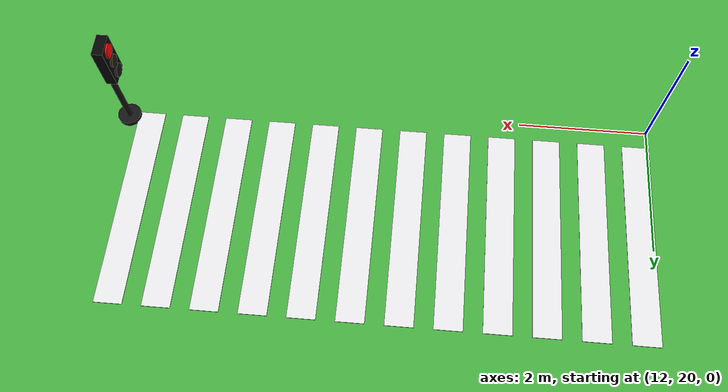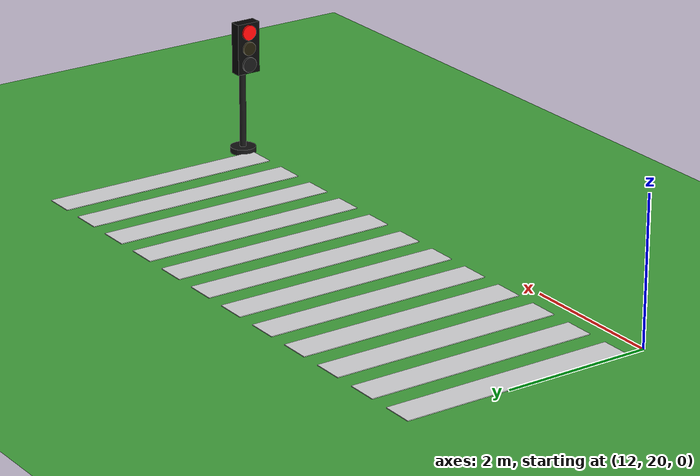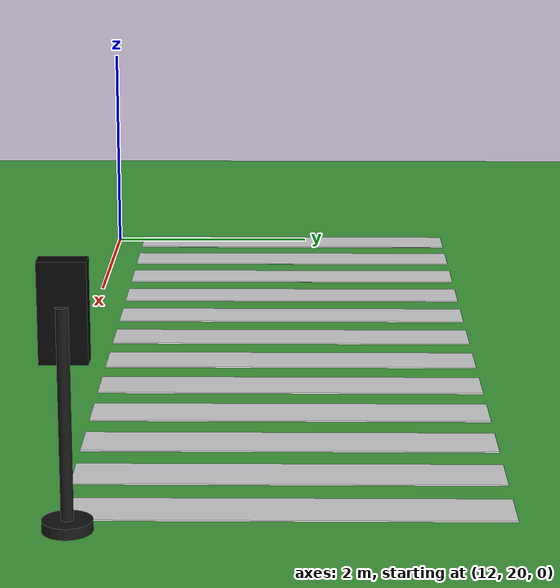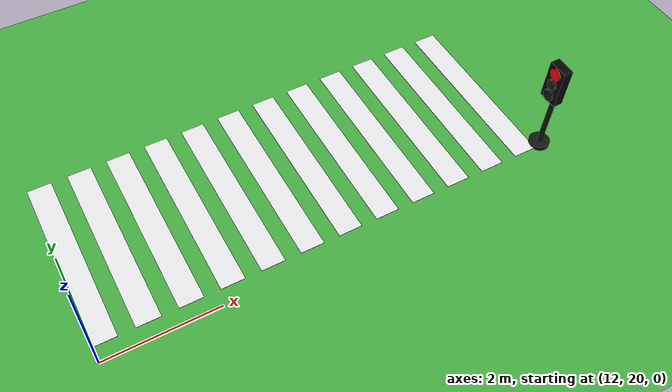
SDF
<sdf version="1.10">
 <world name="city_second">
  <model name="ground_plane">
   <static>true</static>
   <link name="link">
    <collision name="collision">
     <geometry><plane><normal>0 0 1</normal><size>300 300</size></plane></geometry>
    </collision>
    <visual name="visual">
     <geometry><plane><normal>0 0 1</normal><size>300 300</size></plane></geometry>
     <material>
      <ambient>0.280000001 0.689999998 0.25999999 1</ambient>
      <diffuse>0.280000001 0.689999998 0.25999999 1</diffuse>
      <specular>0.0299999993 0.0299999993 0.0299999993 1</specular>
     </material>
    </visual>
    <inertial>
     <mass>1</mass>
     <inertia><ixx>1</ixx><ixy>0</ixy><ixz>0</ixz><iyy>1</iyy><iyz>0</iyz><izz>1</izz></inertia>
    </inertial>
   </link>
  </model>
  <model name="crosswalk_h_1_1_south_5">
   <static>true</static>
   <pose>16.0335 21.8659 0.017000000000000001 0 0 0</pose>
   <link name="stripe_1">
    <collision name="collision">
     <geometry><box><size>0.41999999999999998 3.2000000000000002 0.01</size></box></geometry>
    </collision>
    <visual name="visual">
     <geometry><box><size>0.41999999999999998 3.2000000000000002 0.01</size></box></geometry>
     <material>
      <ambient>0.920000017 0.920000017 0.930000007 1</ambient>
      <diffuse>0.920000017 0.920000017 0.930000007 1</diffuse>
      <specular>0.0299999993 0.0299999993 0.0299999993 1</specular>
     </material>
    </visual>
    <pose>-3.8500000000000001 0 0 0 0 0</pose>
    <inertial>
     <mass>1</mass>
     <inertia><ixx>1</ixx><ixy>0</ixy><ixz>0</ixz><iyy>1</iyy><iyz>0</iyz><izz>1</izz></inertia>
    </inertial>
   </link>
   <link name="stripe_2">
    <collision name="collision">
     <geometry><box><size>0.41999999999999998 3.2000000000000002 0.01</size></box></geometry>
    </collision>
    <visual name="visual">
     <geometry><box><size>0.41999999999999998 3.2000000000000002 0.01</size></box></geometry>
     <material>
      <ambient>0.920000017 0.920000017 0.930000007 1</ambient>
      <diffuse>0.920000017 0.920000017 0.930000007 1</diffuse>
      <specular>0.0299999993 0.0299999993 0.0299999993 1</specular>
     </material>
    </visual>
    <pose>-3.1500000000000004 0 0 0 0 0</pose>
    <inertial>
     <mass>1</mass>
     <inertia><ixx>1</ixx><ixy>0</ixy><ixz>0</ixz><iyy>1</iyy><iyz>0</iyz><izz>1</izz></inertia>
    </inertial>
   </link>
   <link name="stripe_3">
    <collision name="collision">
     <geometry><box><size>0.41999999999999998 3.2000000000000002 0.01</size></box></geometry>
    </collision>
    <visual name="visual">
     <geometry><box><size>0.41999999999999998 3.2000000000000002 0.01</size></box></geometry>
     <material>
      <ambient>0.920000017 0.920000017 0.930000007 1</ambient>
      <diffuse>0.920000017 0.920000017 0.930000007 1</diffuse>
      <specular>0.0299999993 0.0299999993 0.0299999993 1</specular>
     </material>
    </visual>
    <pose>-2.4499999999999993 0 0 0 0 0</pose>
    <inertial>
     <mass>1</mass>
     <inertia><ixx>1</ixx><ixy>0</ixy><ixz>0</ixz><iyy>1</iyy><iyz>0</iyz><izz>1</izz></inertia>
    </inertial>
   </link>
   <link name="stripe_4">
    <collision name="collision">
     <geometry><box><size>0.41999999999999998 3.2000000000000002 0.01</size></box></geometry>
    </collision>
    <visual name="visual">
     <geometry><box><size>0.41999999999999998 3.2000000000000002 0.01</size></box></geometry>
     <material>
      <ambient>0.920000017 0.920000017 0.930000007 1</ambient>
      <diffuse>0.920000017 0.920000017 0.930000007 1</diffuse>
      <specular>0.0299999993 0.0299999993 0.0299999993 1</specular>
     </material>
    </visual>
    <pose>-1.75 0 0 0 0 0</pose>
    <inertial>
     <mass>1</mass>
     <inertia><ixx>1</ixx><ixy>0</ixy><ixz>0</ixz><iyy>1</iyy><iyz>0</iyz><izz>1</izz></inertia>
    </inertial>
   </link>
   <link name="stripe_5">
    <collision name="collision">
     <geometry><box><size>0.41999999999999998 3.2000000000000002 0.01</size></box></geometry>
    </collision>
    <visual name="visual">
     <geometry><box><size>0.41999999999999998 3.2000000000000002 0.01</size></box></geometry>
     <material>
      <ambient>0.920000017 0.920000017 0.930000007 1</ambient>
      <diffuse>0.920000017 0.920000017 0.930000007 1</diffuse>
      <specular>0.0299999993 0.0299999993 0.0299999993 1</specular>
     </material>
    </visual>
    <pose>-1.0500000000000007 0 0 0 0 0</pose>
    <inertial>
     <mass>1</mass>
     <inertia><ixx>1</ixx><ixy>0</ixy><ixz>0</ixz><iyy>1</iyy><iyz>0</iyz><izz>1</izz></inertia>
    </inertial>
   </link>
   <link name="stripe_6">
    <collision name="collision">
     <geometry><box><size>0.41999999999999998 3.2000000000000002 0.01</size></box></geometry>
    </collision>
    <visual name="visual">
     <geometry><box><size>0.41999999999999998 3.2000000000000002 0.01</size></box></geometry>
     <material>
      <ambient>0.920000017 0.920000017 0.930000007 1</ambient>
      <diffuse>0.920000017 0.920000017 0.930000007 1</diffuse>
      <specular>0.0299999993 0.0299999993 0.0299999993 1</specular>
     </material>
    </visual>
    <pose>-0.34999999999999964 0 0 0 0 0</pose>
    <inertial>
     <mass>1</mass>
     <inertia><ixx>1</ixx><ixy>0</ixy><ixz>0</ixz><iyy>1</iyy><iyz>0</iyz><izz>1</izz></inertia>
    </inertial>
   </link>
   <link name="stripe_7">
    <collision name="collision">
     <geometry><box><size>0.41999999999999998 3.2000000000000002 0.01</size></box></geometry>
    </collision>
    <visual name="visual">
     <geometry><box><size>0.41999999999999998 3.2000000000000002 0.01</size></box></geometry>
     <material>
      <ambient>0.920000017 0.920000017 0.930000007 1</ambient>
      <diffuse>0.920000017 0.920000017 0.930000007 1</diffuse>
      <specular>0.0299999993 0.0299999993 0.0299999993 1</specular>
     </material>
    </visual>
    <pose>0.35000000000000142 0 0 0 0 0</pose>
    <inertial>
     <mass>1</mass>
     <inertia><ixx>1</ixx><ixy>0</ixy><ixz>0</ixz><iyy>1</iyy><iyz>0</iyz><izz>1</izz></inertia>
    </inertial>
   </link>
   <link name="stripe_8">
    <collision name="collision">
     <geometry><box><size>0.41999999999999998 3.2000000000000002 0.01</size></box></geometry>
    </collision>
    <visual name="visual">
     <geometry><box><size>0.41999999999999998 3.2000000000000002 0.01</size></box></geometry>
     <material>
      <ambient>0.920000017 0.920000017 0.930000007 1</ambient>
      <diffuse>0.920000017 0.920000017 0.930000007 1</diffuse>
      <specular>0.0299999993 0.0299999993 0.0299999993 1</specular>
     </material>
    </visual>
    <pose>1.0500000000000007 0 0 0 0 0</pose>
    <inertial>
     <mass>1</mass>
     <inertia><ixx>1</ixx><ixy>0</ixy><ixz>0</ixz><iyy>1</iyy><iyz>0</iyz><izz>1</izz></inertia>
    </inertial>
   </link>
   <link name="stripe_9">
    <collision name="collision">
     <geometry><box><size>0.41999999999999998 3.2000000000000002 0.01</size></box></geometry>
    </collision>
    <visual name="visual">
     <geometry><box><size>0.41999999999999998 3.2000000000000002 0.01</size></box></geometry>
     <material>
      <ambient>0.920000017 0.920000017 0.930000007 1</ambient>
      <diffuse>0.920000017 0.920000017 0.930000007 1</diffuse>
      <specular>0.0299999993 0.0299999993 0.0299999993 1</specular>
     </material>
    </visual>
    <pose>1.75 0 0 0 0 0</pose>
    <inertial>
     <mass>1</mass>
     <inertia><ixx>1</ixx><ixy>0</ixy><ixz>0</ixz><iyy>1</iyy><iyz>0</iyz><izz>1</izz></inertia>
    </inertial>
   </link>
   <link name="stripe_10">
    <collision name="collision">
     <geometry><box><size>0.41999999999999998 3.2000000000000002 0.01</size></box></geometry>
    </collision>
    <visual name="visual">
     <geometry><box><size>0.41999999999999998 3.2000000000000002 0.01</size></box></geometry>
     <material>
      <ambient>0.920000017 0.920000017 0.930000007 1</ambient>
      <diffuse>0.920000017 0.920000017 0.930000007 1</diffuse>
      <specular>0.0299999993 0.0299999993 0.0299999993 1</specular>
     </material>
    </visual>
    <pose>2.4499999999999993 0 0 0 0 0</pose>
    <inertial>
     <mass>1</mass>
     <inertia><ixx>1</ixx><ixy>0</ixy><ixz>0</ixz><iyy>1</iyy><iyz>0</iyz><izz>1</izz></inertia>
    </inertial>
   </link>
   <link name="stripe_11">
    <collision name="collision">
     <geometry><box><size>0.41999999999999998 3.2000000000000002 0.01</size></box></geometry>
    </collision>
    <visual name="visual">
     <geometry><box><size>0.41999999999999998 3.2000000000000002 0.01</size></box></geometry>
     <material>
      <ambient>0.920000017 0.920000017 0.930000007 1</ambient>
      <diffuse>0.920000017 0.920000017 0.930000007 1</diffuse>
      <specular>0.0299999993 0.0299999993 0.0299999993 1</specular>
     </material>
    </visual>
    <pose>3.1499999999999986 0 0 0 0 0</pose>
    <inertial>
     <mass>1</mass>
     <inertia><ixx>1</ixx><ixy>0</ixy><ixz>0</ixz><iyy>1</iyy><iyz>0</iyz><izz>1</izz></inertia>
    </inertial>
   </link>
   <link name="stripe_12">
    <collision name="collision">
     <geometry><box><size>0.41999999999999998 3.2000000000000002 0.01</size></box></geometry>
    </collision>
    <visual name="visual">
     <geometry><box><size>0.41999999999999998 3.2000000000000002 0.01</size></box></geometry>
     <material>
      <ambient>0.920000017 0.920000017 0.930000007 1</ambient>
      <diffuse>0.920000017 0.920000017 0.930000007 1</diffuse>
      <specular>0.0299999993 0.0299999993 0.0299999993 1</specular>
     </material>
    </visual>
    <pose>3.8500000000000014 0 0 0 0 0</pose>
    <inertial>
     <mass>1</mass>
     <inertia><ixx>1</ixx><ixy>0</ixy><ixz>0</ixz><iyy>1</iyy><iyz>0</iyz><izz>1</izz></inertia>
    </inertial>
   </link>
  </model>
  <model name="simple_traffic_light_red_west_4">
   <static>true</static>
   <pose>20.233862638842439 20.339580294260792 -1.3877787807814457e-17 0 0 1.5707999672671711</pose>
   <link name="base">
    <pose>0 0 0.040000000000000001 0 0 0</pose>
    <collision name="collision">
     <geometry>
      <cylinder><radius>0.17999999999999999</radius><length>0.080000000000000002</length></cylinder>
     </geometry>
    </collision>
    <visual name="visual">
     <geometry>
      <cylinder><radius>0.17999999999999999</radius><length>0.080000000000000002</length></cylinder>
     </geometry>
     <material>
      <ambient>0.0799999982 0.0799999982 0.0799999982 1</ambient>
      <diffuse>0.0799999982 0.0799999982 0.0799999982 1</diffuse>
      <specular>0.150000006 0.150000006 0.150000006 1</specular>
      <emissive>0 0 0 1</emissive>
     </material>
    </visual>
    <inertial>
     <mass>1</mass>
     <inertia><ixx>1</ixx><ixy>0</ixy><ixz>0</ixz><iyy>1</iyy><iyz>0</iyz><izz>1</izz></inertia>
    </inertial>
   </link>
   <link name="pole">
    <pose>3.5527136788005009e-15 -1.0658141036401503e-14 0.80000000000000004 0 0 3.3306690738754696e-16</pose>
    <collision name="collision">
     <geometry>
      <cylinder><radius>0.044999999999999998</radius><length>1.6000000000000001</length></cylinder>
     </geometry>
    </collision>
    <visual name="visual">
     <geometry>
      <cylinder><radius>0.044999999999999998</radius><length>1.6000000000000001</length></cylinder>
     </geometry>
     <material>
      <ambient>0.0799999982 0.0799999982 0.0799999982 1</ambient>
      <diffuse>0.0799999982 0.0799999982 0.0799999982 1</diffuse>
      <specular>0.150000006 0.150000006 0.150000006 1</specular>
      <emissive>0 0 0 1</emissive>
     </material>
    </visual>
    <inertial>
     <mass>1</mass>
     <inertia><ixx>1</ixx><ixy>0</ixy><ixz>0</ixz><iyy>1</iyy><iyz>0</iyz><izz>1</izz></inertia>
    </inertial>
   </link>
   <link name="signal_box">
    <pose>-3.5527136788005009e-15 0.089999999999996305 1.5500000000000003 0 0 3.3306690738754696e-16</pose>
    <collision name="collision">
     <geometry><box><size>0.34000000000000002 0.16 0.71999999999999997</size></box></geometry>
    </collision>
    <visual name="visual">
     <geometry><box><size>0.34000000000000002 0.16 0.71999999999999997</size></box></geometry>
     <material>
      <ambient>0.0199999996 0.0199999996 0.0199999996 1</ambient>
      <diffuse>0.0199999996 0.0199999996 0.0199999996 1</diffuse>
      <specular>0.150000006 0.150000006 0.150000006 1</specular>
      <emissive>0 0 0 1</emissive>
     </material>
    </visual>
    <inertial>
     <mass>1</mass>
     <inertia><ixx>1</ixx><ixy>0</ixy><ixz>0</ixz><iyy>1</iyy><iyz>0</iyz><izz>1</izz></inertia>
    </inertial>
   </link>
   <link name="red_lens">
    <pose>0 0.18099999999999383 1.78 1.5707963267999998 -7.8504622930783579e-17 -1.3345785898814093e-15</pose>
    <collision name="collision">
     <geometry><cylinder><radius>0.105</radius><length>0.035000000000000003</length></cylinder></geometry>
    </collision>
    <visual name="visual">
     <geometry><cylinder><radius>0.105</radius><length>0.035000000000000003</length></cylinder></geometry>
     <material>
      <ambient>1 0.0199999996 0.0199999996 1</ambient>
      <diffuse>1 0.0199999996 0.0199999996 1</diffuse>
      <specular>0.150000006 0.150000006 0.150000006 1</specular>
      <emissive>1 0.0199999996 0.0199999996 1</emissive>
     </material>
    </visual>
    <inertial>
     <mass>1</mass>
     <inertia><ixx>1</ixx><ixy>0</ixy><ixz>0</ixz><iyy>1</iyy><iyz>0</iyz><izz>1</izz></inertia>
    </inertial>
   </link>
   <link name="yellow_lens">
    <pose>0 0.1819999999999915 1.5500000000000003 1.5707963267999998 -7.8504622930783579e-17 -1.3345785898814093e-15</pose>
    <collision name="collision">
     <geometry>
      <cylinder><radius>0.095000000000000001</radius><length>0.035000000000000003</length></cylinder>
     </geometry>
    </collision>
    <visual name="visual">
     <geometry>
      <cylinder><radius>0.095000000000000001</radius><length>0.035000000000000003</length></cylinder>
     </geometry>
     <material>
      <ambient>0.119999997 0.100000001 0.0199999996 1</ambient>
      <diffuse>0.119999997 0.100000001 0.0199999996 1</diffuse>
      <specular>0.150000006 0.150000006 0.150000006 1</specular>
      <emissive>0 0 0 1</emissive>
     </material>
    </visual>
    <inertial>
     <mass>1</mass>
     <inertia><ixx>1</ixx><ixy>0</ixy><ixz>0</ixz><iyy>1</iyy><iyz>0</iyz><izz>1</izz></inertia>
    </inertial>
   </link>
   <link name="green_lens">
    <pose>3.5527136788005009e-15 0.18299999999999983 1.3199999999999998 1.5707963267999998 -7.8504622930783579e-17 -1.3345785898814093e-15</pose>
    <collision name="collision">
     <geometry><cylinder><radius>0.105</radius><length>0.035000000000000003</length></cylinder></geometry>
    </collision>
    <visual name="visual">
     <geometry><cylinder><radius>0.105</radius><length>0.035000000000000003</length></cylinder></geometry>
     <material>
      <ambient>0.0799999982 0.0799999982 0.0799999982 1</ambient>
      <diffuse>0.0799999982 0.0799999982 0.0799999982 1</diffuse>
      <specular>0.150000006 0.150000006 0.150000006 1</specular>
      <emissive>0 0 0 1</emissive>
     </material>
    </visual>
    <inertial>
     <mass>1</mass>
     <inertia><ixx>1</ixx><ixy>0</ixy><ixz>0</ixz><iyy>1</iyy><iyz>0</iyz><izz>1</izz></inertia>
    </inertial>
   </link>
  </model>
 </world>
</sdf>
